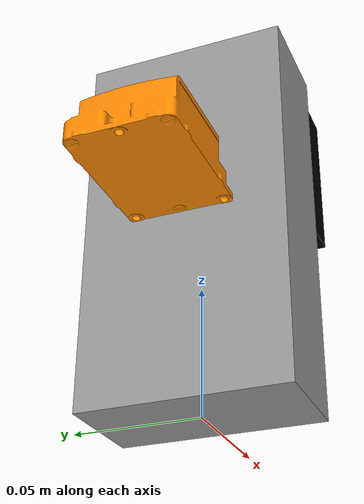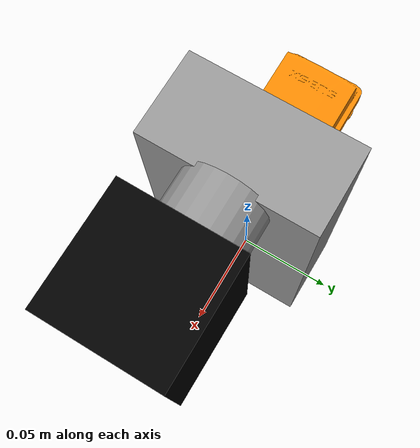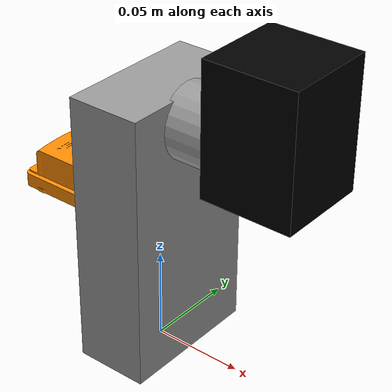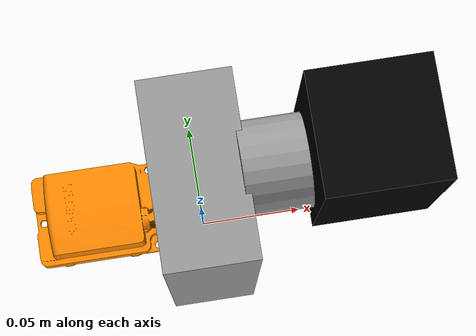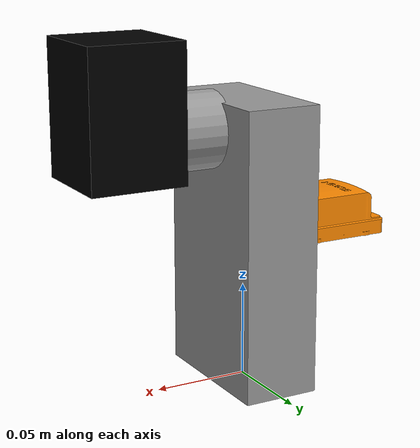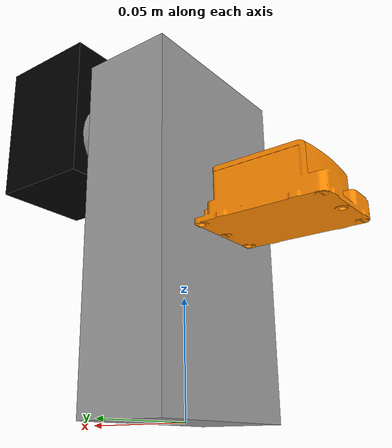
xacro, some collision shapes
<?xml version="1.0"?>
<robot name="spinning_hokuyo_utm30lx" xmlns:xacro="http://www.ros.org/wiki/xacro">

  <!-- Includes -->
  <xacro:include filename="$(find spinning_lidar_description)/urdf/rotating_mounts/v2/rotating_mount.urdf.xacro" />

  <!-- GPU acceleration -->
  <xacro:arg name="gpu" default="false"/>
  <xacro:property name="gpu" value="$(arg gpu)" />

  <!-- Robot tree construction -->
  <link name="world"/>

  <xacro:rotating_mount_macro parent="world" imu_link="xsens" mount_link="laser_mount" axis_link="laser_axis" lidar_link="laser" gpu="${gpu}">
    <origin xyz="0 0 0" rpy="0 0 0" />
  </xacro:rotating_mount_macro>

  <gazebo>
    <plugin name="spinning_lidar_gazebo_ros_control" filename="libgazebo_ros_control.so">
      <robotNamespace>/</robotNamespace>
    </plugin>
  </gazebo>

</robot>

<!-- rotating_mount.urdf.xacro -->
<robot name="rotating_mount" xmlns:xacro="http://www.ros.org/wiki/xacro">

  <xacro:include filename="$(find spinning_lidar_description)/urdf/lidars/hokuyo_ust_20lx.urdf.xacro" />
  <xacro:include filename="$(find spinning_lidar_description)/urdf/rotating_mounts/rotating_mount.transmission.xacro" />
  <xacro:include filename="$(find spinning_lidar_description)/urdf/rotating_mounts/rotating_mount.gazebo" />
  <xacro:include filename="$(find spinning_lidar_description)/urdf/rotating_mounts/v2/imu.gazebo" />
  <xacro:include filename="$(find hector_xacro_tools)/urdf/inertia_tensors.urdf.xacro" />

  <xacro:property name="M_PI" value="3.14159265359"/>
  <material name="grey"><color rgba="0.6 0.6 0.6 1.0" /></material>
  <material name="orange"><color rgba="1.0 0.54 0.0 1.0" /></material>
  <material name="white"><color rgba="0.9 0.9 0.9 1.0" /></material>

  <xacro:macro name="rotating_mount_macro" params="parent imu_link mount_link axis_link lidar_link gpu *origin">

    <link name="${mount_link}_base_link" />

    <joint name="laser_base_link_to_parent" type="fixed">
      <parent link="${parent}"/>
      <child link="${mount_link}_base_link"/>
      <xacro:insert_block name="origin"/>
    </joint>

    <link name="${mount_link}">
      <xacro:inertial_cuboid mass="0.15" x_length="0.04" y_length="0.08" z_length="0.15" />
      <collision name="collision">
        <origin xyz="0 0 0" rpy="0 0 0"/>
        <geometry>
          <box size="0.04 0.08 0.15"/>
        </geometry>
      </collision>
      <visual name="visual">
        <origin xyz="0 0 0" rpy="0 0 0"/>
        <geometry>
          <box size="0.04 0.08 0.15"/>
        </geometry>
        <material name="grey" />
      </visual>
    </link>

    <joint name="${mount_link}_base_link_to_mount" type="fixed">
      <parent link="${mount_link}_base_link"/>
      <child link="${mount_link}"/>
      <axis xyz="0 0 0"/>
      <origin xyz="0 0 0.075" rpy="0 0 0"/>
    </joint>

    <link name="${imu_link}">
      <xacro:inertial_cuboid mass="0.055" x_length="0.057" y_length="0.042" z_length="0.024" />
      <collision name="collision">
        <origin xyz="0 0 0" rpy="0 0 0"/>
        <geometry>
          <box size="0.057 0.042 0.024"/>
        </geometry>
      </collision>
      <visual name="visual">
        <origin xyz="0 0 0" rpy="${M_PI/2} 0 0"/>
        <geometry>
          <mesh scale="0.001 0.001 0.001" filename="package://spinning_lidar_description/meshes/IMU/xsens-mti30.stl" />
        </geometry>
        <material name="orange" />
      </visual>
    </link>

    <joint name="${mount_link}_to_${imu_link}" type="fixed">
      <parent link="${mount_link}"/>
      <child link="${imu_link}"/>
      <axis xyz="0 0 0"/>
      <origin xyz="-0.05 0 0" rpy="0 0 0"/>
    </joint>

    <link name="${axis_link}">
      <xacro:inertial_cuboid mass="0.1" x_length="0.4" y_length="0.8" z_length="1.5"/>
      <visual name="visual">
        <origin xyz="0 0 0" rpy="0 ${M_PI/2} 0"/>
        <geometry>
          <cylinder length="0.035" radius="0.02"/>
        </geometry>
        <material name="grey" />
      </visual>
    </link>

    <joint name="lidar_spin_joint" type="continuous">
      <origin xyz="0.035 0 0.06" rpy="0 0 0"/>
      <axis xyz="1.0 0 0"/>
      <parent link="${mount_link}"/>
      <child link="${axis_link}"/>
      <limit effort="1000" velocity="${2*M_PI}"/>
      <joint_properties damping="0.0" />
    </joint>

    <xacro:hokuyo_ust_20lx_model name="${lidar_link}" gpu="${gpu}"/>

    <joint name="lidar_offset_joint" type="fixed">
      <origin xyz="0.035 0 0.025" rpy="0 0 0"/>
      <axis xyz="0 0 0"/>
      <parent link="${axis_link}"/>
      <child link="${lidar_link}"/>
    </joint>

    <xacro:lidar_spin_joint_transmission />
    <xacro:rotating_mount_gazebo_macro />
    <xacro:imu_gazebo_macro imu_link="${imu_link}"/>

  </xacro:macro>
</robot>

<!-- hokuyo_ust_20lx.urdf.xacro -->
<robot name="hokuyo_ust_20lx" xmlns:xacro="http://www.ros.org/wiki/xacro">
	<xacro:include filename="$(find hector_xacro_tools)/urdf/inertia_tensors.urdf.xacro" />

	<xacro:property name="M_PI" value="3.1415926535897931" />
	<xacro:property name="MAX_ANGLE_SWEEP" value="135.0" />

  <xacro:macro name="hokuyo_ust_20lx_model" params="name gpu">
    <link name="${name}">
      <xacro:inertial_cuboid mass="0.130" x_length="0.1" y_length="0.1" z_length="0.1"/>
      <visual>
        <origin xyz="0 0 0" rpy="0 0 0" />
        <geometry>
          <mesh filename="package://spinning_lidar_description/meshes/LIDAR/hokuyo_ust_10lx.stl" />
        </geometry>
        <material name="Black">
          <color rgba="0.0 0.0 0.0 1" />
        </material>
      </visual>
      <collision>
        <origin xyz="0 0 -0.0115" rpy="0 0 0" />
        <geometry>
          <box size="0.050 0.050 0.070" />
        </geometry>
      </collision>
    </link>

    <xacro:hokuyo_ust_20lx_gazebo   name="hokuyo_ust_20lx_gazebo"
                                    lidar_link="${lidar_link}"
                                    topic="spinning_lidar/scan"
                                    update_rate="40.0"
                                    ray_count="1080"
                                    min_angle="-${MAX_ANGLE_SWEEP}"
                                    max_angle="${MAX_ANGLE_SWEEP}"
                                    gpu="${gpu}" />
  </xacro:macro>
</robot>
